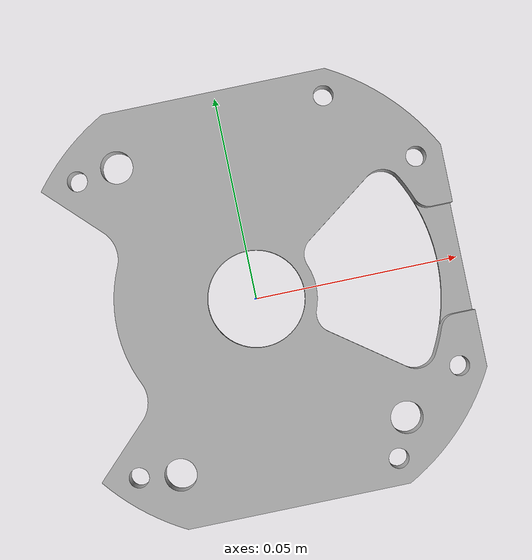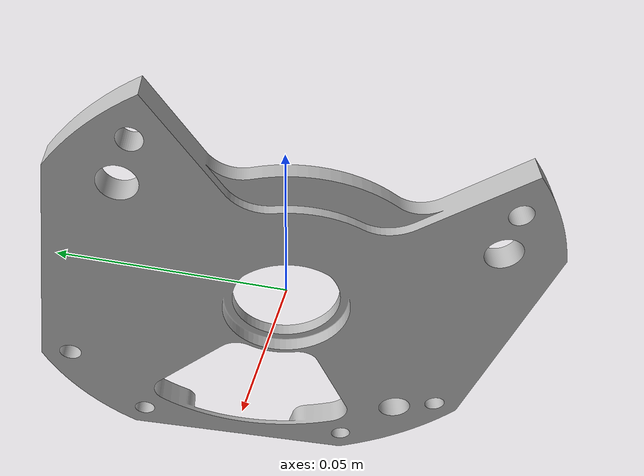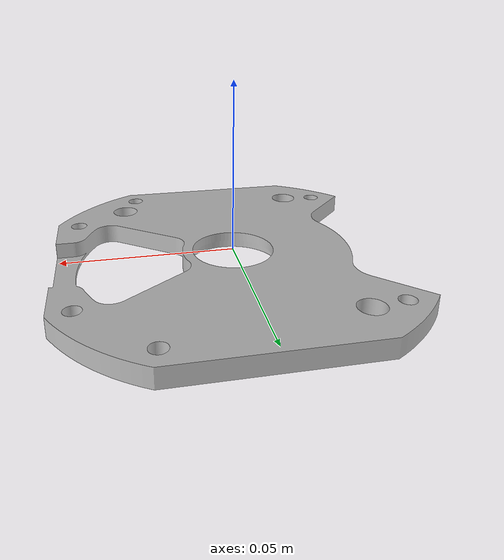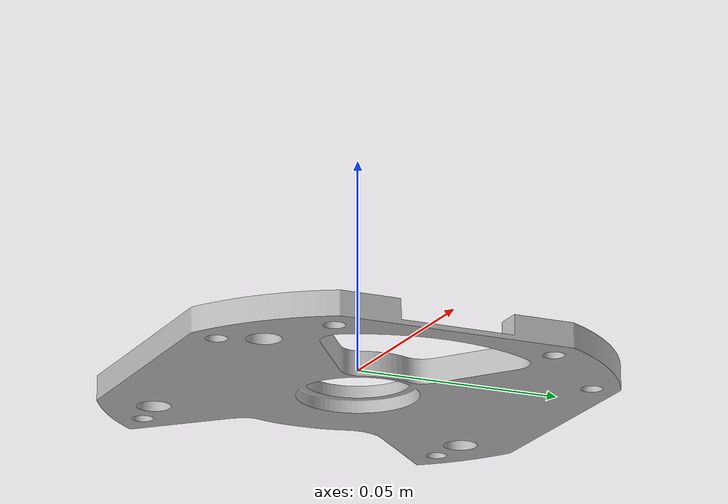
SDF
<?xml version='1.0'?>
<sdf version="1.7">
  <model name="fallback-4">
    <link name="base_link">
      <collision name="collision">
        <geometry>
            <mesh>
                <uri> model://fallback-4/mesh.stl </uri>
                <scale>0.002 0.002 0.002</scale>
            </mesh>
        </geometry>
      </collision>
      <visual name="visual">
        <geometry>
            <mesh>
                <uri> model://fallback-4/mesh.stl </uri>
                <scale>0.002 0.002 0.002</scale>
            </mesh>
        </geometry>
      </visual>
    </link>
  </model>
</sdf>
